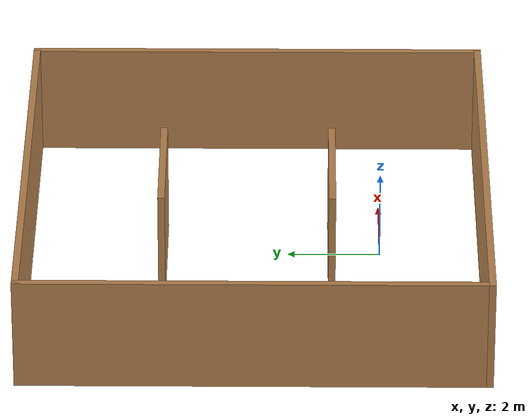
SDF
<?xml version='1.0'?>
<sdf version='1.6'>
  <model name='box_2_walls'>
    <pose frame=''>-0.271956 2.69931 0 0 -0 0</pose>
    <link name='Wall_12'>
      <collision name='Wall_12_Collision'>
        <geometry>
          <box>
            <size>3 0.15 2.5</size>
          </box>
        </geometry>
        <pose frame=''>0 0 1.25 0 -0 0</pose>
      </collision>
      <visual name='Wall_12_Visual'>
        <pose frame=''>0 0 1.25 0 -0 0</pose>
        <geometry>
          <box>
            <size>3 0.15 2.5</size>
          </box>
        </geometry>
        <material>
          <script>
            <uri>file://media/materials/scripts/gazebo.material</uri>
            <name>Gazebo/Wood</name>
          </script>
          <ambient>1 1 1 1</ambient>
        </material>
        <meta>
          <layer>0</layer>
        </meta>
      </visual>
      <pose frame=''>-0.040466 -1.64649 0 0 -0 0</pose>
    </link>
    <link name='Wall_3'>
      <collision name='Wall_3_Collision'>
        <geometry>
          <box>
            <size>10 0.15 2.5</size>
          </box>
        </geometry>
        <pose frame=''>0 0 1.25 0 -0 0</pose>
      </collision>
      <visual name='Wall_3_Visual'>
        <pose frame=''>0 0 1.25 0 -0 0</pose>
        <geometry>
          <box>
            <size>10 0.15 2.5</size>
          </box>
        </geometry>
        <material>
          <script>
            <uri>file://media/materials/scripts/gazebo.material</uri>
            <name>Gazebo/Wood</name>
          </script>
          <ambient>1 1 1 1</ambient>
        </material>
        <meta>
          <layer>0</layer>
        </meta>
      </visual>
      <pose frame=''>-4.925 0 0 0 -0 1.5708</pose>
    </link>
    <link name='Wall_5'>
      <collision name='Wall_5_Collision'>
        <geometry>
          <box>
            <size>10 0.15 2.5</size>
          </box>
        </geometry>
        <pose frame=''>0 0 1.25 0 -0 0</pose>
      </collision>
      <visual name='Wall_5_Visual'>
        <pose frame=''>0 0 1.25 0 -0 0</pose>
        <geometry>
          <box>
            <size>10 0.15 2.5</size>
          </box>
        </geometry>
        <material>
          <script>
            <uri>file://media/materials/scripts/gazebo.material</uri>
            <name>Gazebo/Wood</name>
          </script>
          <ambient>1 1 1 1</ambient>
        </material>
        <meta>
          <layer>0</layer>
        </meta>
      </visual>
      <pose frame=''>0 -4.925 0 0 -0 0</pose>
    </link>
    <link name='Wall_6'>
      <collision name='Wall_6_Collision'>
        <geometry>
          <box>
            <size>10 0.15 2.5</size>
          </box>
        </geometry>
        <pose frame=''>0 0 1.25 0 -0 0</pose>
      </collision>
      <visual name='Wall_6_Visual'>
        <pose frame=''>0 0 1.25 0 -0 0</pose>
        <geometry>
          <box>
            <size>10 0.15 2.5</size>
          </box>
        </geometry>
        <material>
          <script>
            <uri>file://media/materials/scripts/gazebo.material</uri>
            <name>Gazebo/Wood</name>
          </script>
          <ambient>1 1 1 1</ambient>
        </material>
        <meta>
          <layer>0</layer>
        </meta>
      </visual>
      <pose frame=''>4.925 0 0 0 -0 1.5708</pose>
    </link>
    <link name='Wall_7'>
      <collision name='Wall_7_Collision'>
        <geometry>
          <box>
            <size>10 0.15 2.5</size>
          </box>
        </geometry>
        <pose frame=''>0 0 1.25 0 -0 0</pose>
      </collision>
      <visual name='Wall_7_Visual'>
        <pose frame=''>0 0 1.25 0 -0 0</pose>
        <geometry>
          <box>
            <size>10 0.15 2.5</size>
          </box>
        </geometry>
        <material>
          <script>
            <uri>file://media/materials/scripts/gazebo.material</uri>
            <name>Gazebo/Wood</name>
          </script>
          <ambient>1 1 1 1</ambient>
        </material>
        <meta>
          <layer>0</layer>
        </meta>
      </visual>
      <pose frame=''>0 4.925 0 0 -0 3.14159</pose>
    </link>
    <link name='Wall_9'>
      <collision name='Wall_9_Collision'>
        <geometry>
          <box>
            <size>3 0.15 2.5</size>
          </box>
        </geometry>
        <pose frame=''>0 0 1.25 0 -0 0</pose>
      </collision>
      <visual name='Wall_9_Visual'>
        <pose frame=''>0 0 1.25 0 -0 0</pose>
        <geometry>
          <box>
            <size>3 0.15 2.5</size>
          </box>
        </geometry>
        <material>
          <script>
            <uri>file://media/materials/scripts/gazebo.material</uri>
            <name>Gazebo/Wood</name>
          </script>
          <ambient>1 1 1 1</ambient>
        </material>
        <meta>
          <layer>0</layer>
        </meta>
      </visual>
      <pose frame=''>-0.040466 1.99407 0 0 -0 0</pose>
    </link>
    <static>1</static>
  </model>
</sdf>
